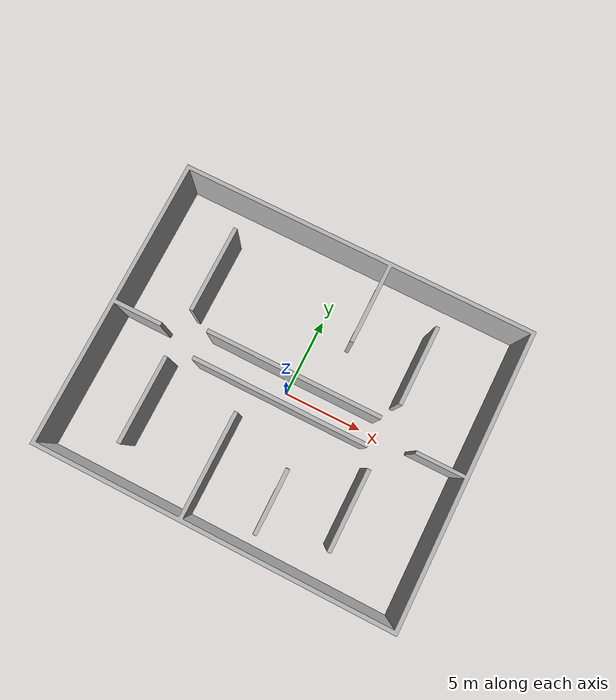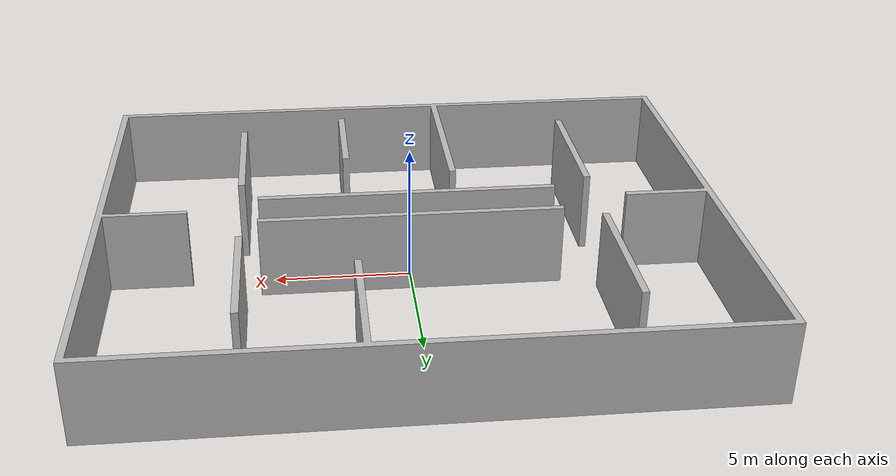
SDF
<?xml version="1.0" ?>
<sdf version="1.4">
  <model name="room">
    <static>1</static>
    <link name="link">

      <collision name="colision1">
        <pose>0 0 0 0 0 0</pose>
        <geometry>
          <mesh>
            <uri>model://room/meshes/room.dae</uri>
	          <scale> 1 1 1 </scale>
          </mesh>
        </geometry>
      </collision>

      <visual name="visual1">
        <pose>0 0 0 0 0 0</pose>
        <geometry>
          <mesh>
            <uri>model://room/meshes/room.dae</uri>
	          <scale> 1 1 1 </scale>
          </mesh>
        </geometry>
      </visual>

      <velocity_decay>
        <linear>0.000000</linear>
        <angular>0.000000</angular>
      </velocity_decay>
      <self_collide>0</self_collide>
      <kinematic>0</kinematic>
      <gravity>1</gravity>
    </link>
  </model>
</sdf>
